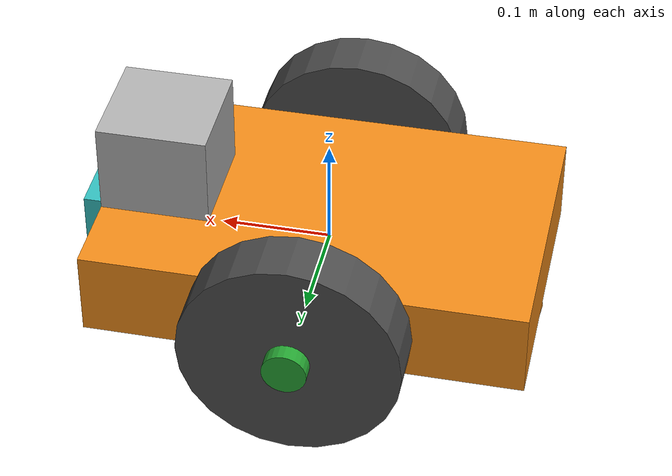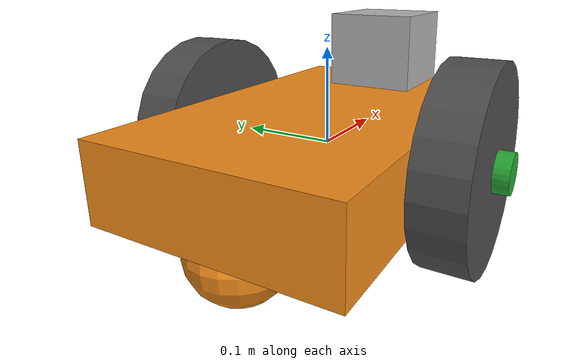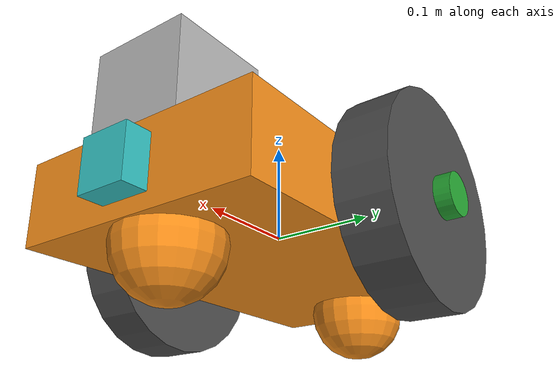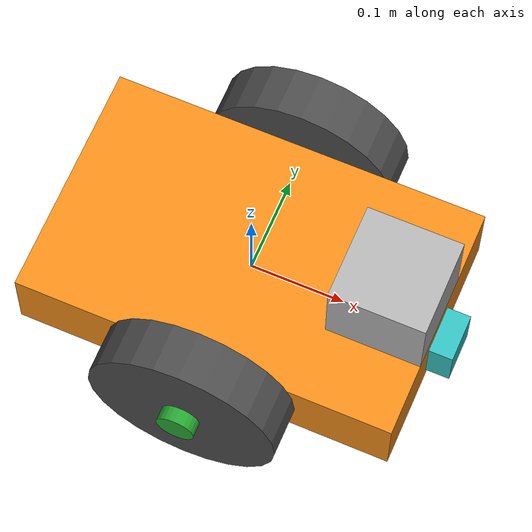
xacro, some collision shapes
<?xml version='1.0'?>

<robot name="my_robot" xmlns:xacro="http://www.ros.org/wiki/xacro">
  <xacro:include filename="$(find my_robot)/urdf/my_robot.gazebo" />
  <link name="robot_footprint"></link>

  <joint name="robot_footprint_joint" type="fixed">
    <origin xyz="0 0 0" rpy="0 0 0" />
    <parent link="robot_footprint"/>
    <child link="chassis" />
  </joint>

  <link name='chassis'>
    <pose>0 0 0.1 0 0 0</pose>

    <inertial>
      <mass value="15.0"/>
      <origin xyz="0.0 0 0" rpy=" 0 0 0"/>
      <inertia
          ixx="0.1" ixy="0" ixz="0"
          iyy="0.1" iyz="0"
          izz="0.1"
      />
    </inertial>

    <collision name='collision'>
      <origin xyz="0 0 0" rpy=" 0 0 0"/>
      <geometry>
        <box size=".4 .25 .08"/>
      </geometry>

    </collision>

    <visual name='chassis_visual'>
      <origin xyz="0 0 0" rpy=" 0 0 0"/>
      <geometry>
        <box size=".4 .25 .08"/>
      </geometry>

    </visual>

    <collision name='back_caster_collision'>
      <origin xyz="-0.15 0 -0.05" rpy=" 0 0 0"/>
      <geometry>
        <sphere radius="0.0499"/>
      </geometry>
    </collision>

    <visual name='back_caster_visual'>
      <origin xyz="-0.15 0 -0.05" rpy=" 0 0 0"/>
      <geometry>
        <sphere radius="0.05"/>
      </geometry>
    </visual>

    <collision name='front_caster_collision'>
      <origin xyz="0.15 0 -0.05" rpy=" 0 0 0"/>
      <geometry>
        <sphere radius="0.0499"/>
      </geometry>
    </collision>

    <visual name='front_caster_visual'>
      <origin xyz="0.15 0 -0.05" rpy=" 0 0 0"/>
      <geometry>
        <sphere radius="0.05"/>
      </geometry>
    </visual>

  </link>
<gazebo reference="chassis">
  <material>Gazebo/Orange</material>
</gazebo>

  <link name="left_wheel">
    <pose>0.0 0 0.1 0 0 0</pose>
    <inertial>
      <mass value="5.0"/>
      <origin xyz="-0.0 0 0" rpy=" 0 1.5707 1.5707"/>
      <inertia
          ixx="0.1" ixy="0" ixz="0"
          iyy="0.1" iyz="0"
          izz="0.1"
      />
    </inertial>

    <collision name='left_wheel_collision'>
      <origin xyz="0 0 0" rpy=" 0 1.5707 1.5707"/>
      <geometry>
        <cylinder radius="0.1" length="0.05"/>
      </geometry>
    </collision>

    <visual name='left_wheel_visual'>
      <origin xyz="0 0 0" rpy=" 0 1.5707 1.5707"/>
      <geometry>
        <cylinder radius="0.1" length="0.05"/>
      </geometry>
    </visual>

  </link>
<gazebo reference="left_wheel">
  <material>Gazebo/DarkGrey</material>
</gazebo>
  <joint name="left_wheel_hinge" type="continuous">
    <origin xyz="0 0.15 0" rpy="0 0 0" />
    <parent link="chassis"/>
    <child link="left_wheel" />
    <axis xyz="0 1 0" rpy="0 0 0"/>
    <limit effort="10000" velocity="1000"/>
    <dynamics damping="1.0" friction="1.0"/>
  </joint>

  <link name="left_wheel_shaft">
    <pose>0.0 0 0.1 0 0 0</pose>
    <inertial>
      <mass value="5.0"/>
      <origin xyz="-0.0 0 0" rpy=" 0 1.5707 1.5707"/>
      <inertia
          ixx="0.1" ixy="0" ixz="0"
          iyy="0.1" iyz="0"
          izz="0.1"
      />
    </inertial>

    <collision name='left_wheel_shaft_collision'>
      <origin xyz="0 0 0" rpy=" 0 1.5707 1.5707"/>
      <geometry>
        <cylinder radius="0.02" length="0.06"/>
      </geometry>
    </collision>

    <visual name='left_wheel_shaft_visual'>
      <origin xyz="0 0 0" rpy=" 0 1.5707 1.5707"/>
      <geometry>
        <cylinder radius="0.02" length="0.06"/>
      </geometry>
    </visual>

  </link>
<gazebo reference="left_wheel_shaft">
  <material>Gazebo/Green</material>
</gazebo>
  <joint name="left_wheel_shaft_hinge" type="fixed">
    <origin xyz="0 0.01 0" rpy="0 0 0" />
    <parent link="left_wheel"/>
    <child link="left_wheel_shaft" />
    <axis xyz="0 1 0" rpy="0 0 0"/>
  </joint>

  <link name="right_wheel">
    <pose>0.0 0 0.1 0 0 0</pose>
    <inertial>
      <mass value="5.0"/>
      <origin xyz="-0.0 0 0" rpy=" 0 1.5707 1.5707"/>
      <inertia
          ixx="0.1" ixy="0" ixz="0"
          iyy="0.1" iyz="0"
          izz="0.1"
      />
    </inertial>

    <collision name='right_wheel_collision'>
      <origin xyz="0 0 0" rpy=" 0 1.5707 1.5707"/>
      <geometry>
        <cylinder radius="0.1" length="0.05"/>
      </geometry>
    </collision>

    <visual name='right_wheel_visual'>
      <origin xyz="0 0 0" rpy=" 0 1.5707 1.5707"/>
      <geometry>
        <cylinder radius="0.1" length="0.05"/>
      </geometry>
    </visual>

  </link>
<gazebo reference="right_wheel">
  <material>Gazebo/DarkGrey</material>
</gazebo>
  <joint name="right_wheel_hinge" type="continuous">
    <origin xyz="0 -0.15 0" rpy="0 0 0" />
    <parent link="chassis"/>
    <child link="right_wheel" />
    <axis xyz="0 1 0" rpy="0 0 0"/>
    <limit effort="10000" velocity="1000"/>
    <dynamics damping="1.0" friction="1.0"/>
  </joint>

  <link name="right_wheel_shaft">
    <pose>0.0 0 0.1 0 0 0</pose>
    <inertial>
      <mass value="5.0"/>
      <origin xyz="-0.0 0 0" rpy=" 0 1.5707 1.5707"/>
      <inertia
          ixx="0.1" ixy="0" ixz="0"
          iyy="0.1" iyz="0"
          izz="0.1"
      />
    </inertial>

    <collision name='right_wheel_shaft_collision'>
      <origin xyz="0 0 0" rpy=" 0 1.5707 1.5707"/>
      <geometry>
        <cylinder radius="0.02" length="0.06"/>
      </geometry>
    </collision>

    <visual name='right_wheel_shaft_visual'>
      <origin xyz="0 0 0" rpy=" 0 1.5707 1.5707"/>
      <geometry>
        <cylinder radius="0.02" length="0.06"/>
      </geometry>
    </visual>

  </link>
<gazebo reference="right_wheel_shaft">
  <material>Gazebo/Green</material>
</gazebo>
  <joint name="right_wheel_shaft_hinge" type="fixed">
    <origin xyz="0 -0.01 0" rpy="0 0 0" />
    <parent link="right_wheel"/>
    <child link="right_wheel_shaft" />
    <axis xyz="0 1 0" rpy="0 0 0"/>
  </joint>

  <link name="camera">
    <pose>0 0 0 0 0 0</pose>
    <inertial>
      <mass value="0.1"/>
      <origin xyz="0.0 0 0" rpy=" 0 0 0"/>
      <inertia
          ixx="1e-6" ixy="0" ixz="0"
          iyy="1e-6" iyz="0"
          izz="1e-6"
      />
    </inertial>

    <collision name='camera_collision'>
      <origin xyz="0 0 0" rpy=" 0 0 0"/>
      <geometry>
        <box size=".05 .05 .05"/>
      </geometry>
    </collision>

    <visual name="camera_visual">
      <origin xyz="0 0 0" rpy=" 0 0 0"/>
      <geometry>
        <box size=".05 .05 .05"/>
      </geometry>
    </visual>

  </link>

  <joint name="camera_joint" type="fixed">
    <origin xyz="0.2 0 0" rpy="0 0 0" />
    <parent link="chassis"/>
    <child link="camera" />
    <axis xyz="0 1 0" rpy="0 0 0"/>
  </joint>

  <link name="hokuyo">
    <pose>0 0 0 0 0 0</pose>
    <inertial>
      <mass value="1e-5"/>
      <origin xyz="0.0 0 0" rpy=" 0 0 0"/>
      <inertia
          ixx="1e-6" ixy="0" ixz="0"
          iyy="1e-6" iyz="0"
          izz="1e-6"
      />
    </inertial>

    <collision name='hokuyo_collision'>
      <origin xyz="0 0 0" rpy=" 0 0 0"/>
      <geometry>
        <box size=".1 .1 .1"/>
      </geometry>
    </collision>

    <visual name='hokuyo_visual'>
      <origin xyz="0 0 0" rpy=" 0 0 0"/>
      <geometry>
        <mesh filename="package://my_robot/meshes/hokuyo.dae" />
      </geometry>
    </visual>
  </link>

  <joint name="hokuyo_joint" type="fixed">
    <origin xyz="0.15 0 0.075" rpy="0 0 0" />
    <parent link="chassis"/>
    <child link="hokuyo" />
    <axis xyz="0 1 0" rpy="0 0 0"/>
  </joint>

</robot>
